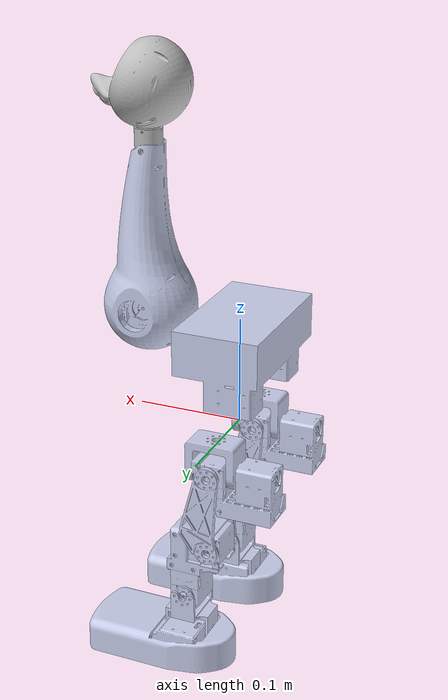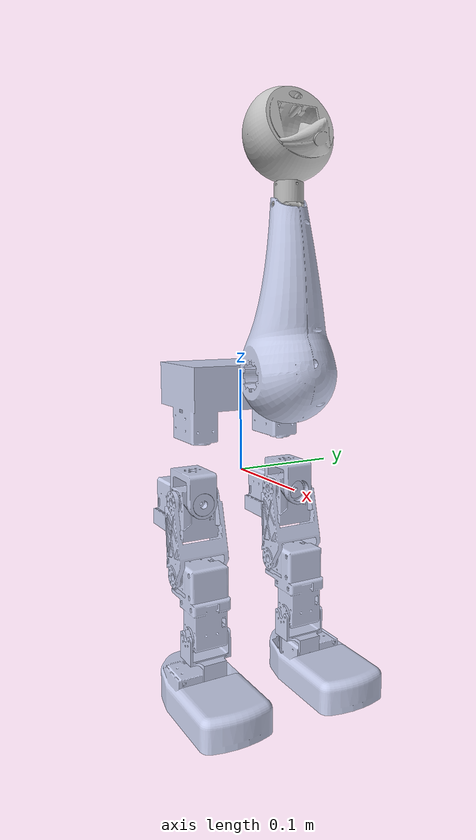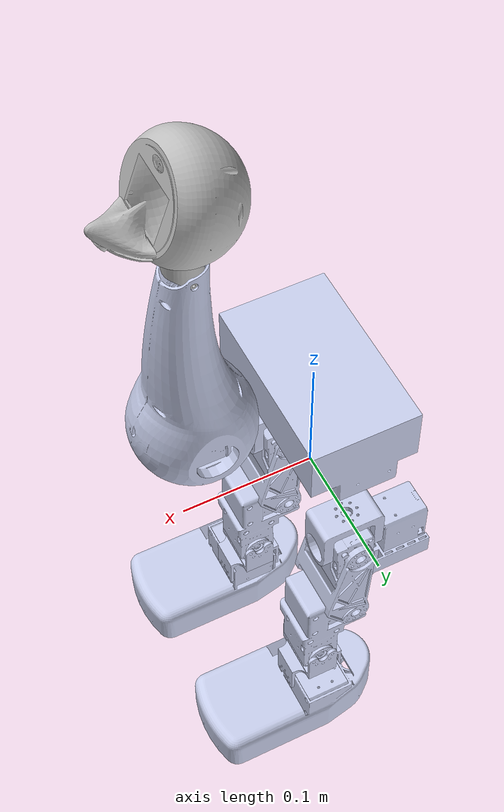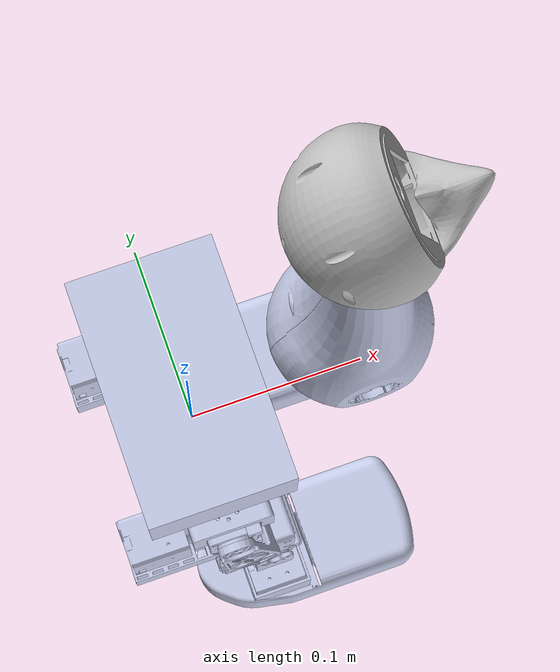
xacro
<?xml version="1.0" encoding="utf-8"?>
<robot name="exhx5" xmlns:xacro="http://ros.org/wiki/xacro">

  <xacro:include filename="$(find exhx5_description)/urdf/exhx5_gazebo.xacro" />
  <xacro:include filename="$(find exhx5_description)/urdf/exhx5_transmissions.xacro" />

  <link
    name="body_link">
    <inertial>
      <origin
        xyz="-0.024506 -3.2231E-05 0.033725"
        rpy="0 0 0" />
      <mass
        value="0.75842" />
      <inertia
        ixx="0.0018267"
        ixy="-0.00016368"
        ixz="-0.00022149"
        iyy="0.0028108"
        iyz="-5.9556E-06"
        izz="0.0041242" />
    </inertial>
    <visual>
      <origin
        xyz="0 0 0"
        rpy="0 0 0" />
      <geometry>
        <mesh
          filename="package://exhx5_description/meshes/body_link.STL" />
      </geometry>
      <material
        name="">
        <color
          rgba="0.79216 0.81961 0.93333 1" />
      </material>
    </visual>
    <collision>
      <origin
        xyz="0 0 0"
        rpy="0 0 0" />
      <geometry>
        <mesh
          filename="package://exhx5_description/meshes/body_link.STL" />
      </geometry>
    </collision>
  </link>
  <link
    name="r_hip_yaw_link">
    <inertial>
      <origin
        xyz="6.9389E-16 0.00049037 0.015811"
        rpy="0 0 0" />
      <mass
        value="0.017594" />
      <inertia
        ixx="8.0769E-06"
        ixy="9.3231E-20"
        ixz="-6.8781E-20"
        iyy="3.8081E-06"
        iyz="4.4924E-07"
        izz="6.9409E-06" />
    </inertial>
    <visual>
      <origin
        xyz="0 0 0"
        rpy="0 0 0" />
      <geometry>
        <mesh
          filename="package://exhx5_description/meshes/r_hip_yaw_link.STL" />
      </geometry>
      <material
        name="">
        <color
          rgba="0.79216 0.81961 0.93333 1" />
      </material>
    </visual>
    <collision>
      <origin
        xyz="0 0 0"
        rpy="0 0 0" />
      <geometry>
        <mesh
          filename="package://exhx5_description/meshes/r_hip_yaw_link.STL" />
      </geometry>
    </collision>
  </link>
  <joint
    name="r_hip_yaw"
    type="revolute">
    <origin
      xyz="0 -0.0539999999999998 -0.024500000000006"
      rpy="0 0 1.57079632679488" />
    <parent
      link="body_link" />
    <child
      link="r_hip_yaw_link" />
    <axis
      xyz="0 0 1" />
    <limit
      lower="-1.57"
      upper="1.57"
      effort="0"
      velocity="0" />
    <safety_controller
      k_velocity="0" />
  </joint>
  <link
    name="r_hip_roll_link">
    <inertial>
      <origin
        xyz="0.013265 -0.00034234 -0.01908"
        rpy="0 0 0" />
      <mass
        value="0.10053" />
      <inertia
        ixx="1.7395E-05"
        ixy="-2.6908E-07"
        ixz="3.1908E-07"
        iyy="2.5171E-05"
        iyz="-1.1436E-12"
        izz="2.5299E-05" />
    </inertial>
    <visual>
      <origin
        xyz="0 0 0"
        rpy="0 0 0" />
      <geometry>
        <mesh
          filename="package://exhx5_description/meshes/r_hip_roll_link.STL" />
      </geometry>
      <material
        name="">
        <color
          rgba="0.79216 0.81961 0.93333 1" />
      </material>
    </visual>
    <collision>
      <origin
        xyz="0 0 0"
        rpy="0 0 0" />
      <geometry>
        <mesh
          filename="package://exhx5_description/meshes/r_hip_roll_link.STL" />
      </geometry>
    </collision>
  </link>
  <joint
    name="r_hip_roll"
    type="revolute">
    <origin
      xyz="0 0 0"
      rpy="1.5708 1.5708 0" />
    <parent
      link="r_hip_yaw_link" />
    <child
      link="r_hip_roll_link" />
    <axis
      xyz="0 0 1" />
    <limit
      lower="-1.57"
      upper="1.57"
      effort="0"
      velocity="0" />
    <safety_controller
      k_velocity="0" />
  </joint>
  <link
    name="r_hip_pitch_link">
    <inertial>
      <origin
        xyz="0.041705 0.0061699 2.177E-08"
        rpy="0 0 0" />
      <mass
        value="0.023646" />
      <inertia
        ixx="1.2406E-05"
        ixy="-7.7791E-07"
        ixz="9.7606E-13"
        iyy="2.2891E-05"
        iyz="4.5062E-12"
        izz="1.4533E-05" />
    </inertial>
    <visual>
      <origin
        xyz="0 0 0"
        rpy="0 0 0" />
      <geometry>
        <mesh
          filename="package://exhx5_description/meshes/r_hip_pitch_link.STL" />
      </geometry>
      <material
        name="">
        <color
          rgba="0.79216 0.81961 0.93333 1" />
      </material>
    </visual>
    <collision>
      <origin
        xyz="0 0 0"
        rpy="0 0 0" />
      <geometry>
        <mesh
          filename="package://exhx5_description/meshes/r_hip_pitch_link.STL" />
      </geometry>
    </collision>
  </link>
  <joint
    name="r_hip_pitch"
    type="revolute">
    <origin
      xyz="0 0 0"
      rpy="1.5708 0 0" />
    <parent
      link="r_hip_roll_link" />
    <child
      link="r_hip_pitch_link" />
    <axis
      xyz="0 0 1" />
    <limit
      lower="-1.57"
      upper="1.57"
      effort="0"
      velocity="0" />
    <safety_controller
      k_velocity="0" />
  </joint>
  <link
    name="r_knee_link">
    <inertial>
      <origin
        xyz="0.025579 0.0091776 0.00042921"
        rpy="0 0 0" />
      <mass
        value="0.10139" />
      <inertia
        ixx="2.4558E-05"
        ixy="4.9361E-07"
        ixz="-1.2228E-07"
        iyy="2.2855E-05"
        iyz="3.2346E-07"
        izz="2.5943E-05" />
    </inertial>
    <visual>
      <origin
        xyz="0 0 0"
        rpy="0 0 0" />
      <geometry>
        <mesh
          filename="package://exhx5_description/meshes/r_knee_link.STL" />
      </geometry>
      <material
        name="">
        <color
          rgba="0.79216 0.81961 0.93333 1" />
      </material>
    </visual>
    <collision>
      <origin
        xyz="0 0 0"
        rpy="0 0 0" />
      <geometry>
        <mesh
          filename="package://exhx5_description/meshes/r_knee_link.STL" />
      </geometry>
    </collision>
  </link>
  <joint
    name="r_knee"
    type="revolute">
    <origin
      xyz="0.075954 0 0"
      rpy="0 0.0004216 0.42593" />
    <parent
      link="r_hip_pitch_link" />
    <child
      link="r_knee_link" />
    <axis
      xyz="-0.0004216 0 1" />
    <limit
      lower="-1.57"
      upper="1.57"
      effort="0"
      velocity="0" />
    <safety_controller
      k_velocity="0" />
  </joint>
  <link
    name="r_ank_pitch_link">
    <inertial>
      <origin
        xyz="0.02325 -2.2204E-16 1.3878E-17"
        rpy="0 0 0" />
      <mass
        value="0.0095421" />
      <inertia
        ixx="3.5492E-06"
        ixy="1.0553E-21"
        ixz="1.8686E-21"
        iyy="2.8994E-06"
        iyz="-8.2951E-22"
        izz="2.8994E-06" />
    </inertial>
    <visual>
      <origin
        xyz="0 0 0"
        rpy="0 0 0" />
      <geometry>
        <mesh
          filename="package://exhx5_description/meshes/r_ank_pitch_link.STL" />
      </geometry>
      <material
        name="">
        <color
          rgba="0.79216 0.81961 0.93333 1" />
      </material>
    </visual>
    <collision>
      <origin
        xyz="0 0 0"
        rpy="0 0 0" />
      <geometry>
        <mesh
          filename="package://exhx5_description/meshes/r_ank_pitch_link.STL" />
      </geometry>
    </collision>
  </link>
  <joint
    name="r_ank_pitch"
    type="revolute">
    <origin
      xyz="0.059298 0 0"
      rpy="0.00017419 -0.00038393 -0.42593" />
    <parent
      link="r_knee_link" />
    <child
      link="r_ank_pitch_link" />
    <axis
      xyz="0 0 1" />
    <limit
      lower="-1.57"
      upper="1.57"
      effort="0"
      velocity="0" />
    <safety_controller
      k_velocity="0" />
  </joint>
  <link
    name="r_ank_roll_link">
    <inertial>
      <origin
        xyz="0.00474 -0.010189 0.017732"
        rpy="0 0 0" />
      <mass
        value="0.1244" />
      <inertia
        ixx="0.00013147"
        ixy="1.1537E-08"
        ixz="1.5896E-06"
        iyy="9.5366E-05"
        iyz="-2.4562E-07"
        izz="4.9024E-05" />
    </inertial>
    <visual>
      <origin
        xyz="0 0 0"
        rpy="0 0 0" />
      <geometry>
        <mesh
          filename="package://exhx5_description/meshes/r_ank_roll_link.STL" />
      </geometry>
      <material
        name="">
        <color
          rgba="0.79216 0.81961 0.93333 1" />
      </material>
    </visual>
    <collision>
      <origin
        xyz="0 0 0"
        rpy="0 0 0" />
      <geometry>
        <mesh
          filename="package://exhx5_description/meshes/r_ank_roll_link.STL" />
      </geometry>
    </collision>
  </link>
  <joint
    name="r_ank_roll"
    type="revolute">
    <origin
      xyz="0.0465 0 0"
      rpy="-1.5708 0 0" />
    <parent
      link="r_ank_pitch_link" />
    <child
      link="r_ank_roll_link" />
    <axis
      xyz="0 0 1" />
    <limit
      lower="-1.57"
      upper="1.57"
      effort="0"
      velocity="0" />
    <safety_controller
      k_velocity="0" />
  </joint>
  <link
    name="l_hip_yaw_link">
    <inertial>
      <origin
        xyz="2.5674E-16 0.00049037 0.015811"
        rpy="0 0 0" />
      <mass
        value="0.017594" />
      <inertia
        ixx="8.0769E-06"
        ixy="9.4844E-20"
        ixz="-7.0787E-20"
        iyy="3.8081E-06"
        iyz="4.4924E-07"
        izz="6.9409E-06" />
    </inertial>
    <visual>
      <origin
        xyz="0 0 0"
        rpy="0 0 0" />
      <geometry>
        <mesh
          filename="package://exhx5_description/meshes/l_hip_yaw_link.STL" />
      </geometry>
      <material
        name="">
        <color
          rgba="0.79216 0.81961 0.93333 1" />
      </material>
    </visual>
    <collision>
      <origin
        xyz="0 0 0"
        rpy="0 0 0" />
      <geometry>
        <mesh
          filename="package://exhx5_description/meshes/l_hip_yaw_link.STL" />
      </geometry>
    </collision>
  </link>
  <joint
    name="l_hip_yaw"
    type="revolute">
    <origin
      xyz="0 0.054 -0.0245"
      rpy="0 0 1.5708" />
    <parent
      link="body_link" />
    <child
      link="l_hip_yaw_link" />
    <axis
      xyz="-2.8454E-05 0 1" />
    <limit
      lower="-1.57"
      upper="1.57"
      effort="0"
      velocity="0" />
    <safety_controller
      k_velocity="0" />
  </joint>
  <link
    name="l_hip_roll_link">
    <inertial>
      <origin
        xyz="0.013576 -0.00035038 -0.020028"
        rpy="0 0 0" />
      <mass
        value="0.098221" />
      <inertia
        ixx="1.7307E-05"
        ixy="-2.6908E-07"
        ixz="3.1908E-07"
        iyy="2.5083E-05"
        iyz="-1.1436E-12"
        izz="2.5141E-05" />
    </inertial>
    <visual>
      <origin
        xyz="0 0 0"
        rpy="0 0 0" />
      <geometry>
        <mesh
          filename="package://exhx5_description/meshes/l_hip_roll_link.STL" />
      </geometry>
      <material
        name="">
        <color
          rgba="0.79216 0.81961 0.93333 1" />
      </material>
    </visual>
    <collision>
      <origin
        xyz="0 0 0"
        rpy="0 0 0" />
      <geometry>
        <mesh
          filename="package://exhx5_description/meshes/l_hip_roll_link.STL" />
      </geometry>
    </collision>
  </link>
  <joint
    name="l_hip_roll"
    type="revolute">
    <origin
      xyz="0 0 0"
      rpy="1.5708 1.5708 0" />
    <parent
      link="l_hip_yaw_link" />
    <child
      link="l_hip_roll_link" />
    <axis
      xyz="0 0 1" />
    <limit
      lower="-1.57"
      upper="1.57"
      effort="0"
      velocity="0" />
    <safety_controller
      k_velocity="0" />
  </joint>
  <link
    name="l_hip_pitch_link">
    <inertial>
      <origin
        xyz="0.041705 0.0061699 2.1346E-08"
        rpy="0 0 0" />
      <mass
        value="0.023646" />
      <inertia
        ixx="1.2406E-05"
        ixy="-7.7791E-07"
        ixz="8.1343E-13"
        iyy="2.2891E-05"
        iyz="4.6012E-12"
        izz="1.4533E-05" />
    </inertial>
    <visual>
      <origin
        xyz="0 0 0"
        rpy="0 0 0" />
      <geometry>
        <mesh
          filename="package://exhx5_description/meshes/l_hip_pitch_link.STL" />
      </geometry>
      <material
        name="">
        <color
          rgba="0.79216 0.81961 0.93333 1" />
      </material>
    </visual>
    <collision>
      <origin
        xyz="0 0 0"
        rpy="0 0 0" />
      <geometry>
        <mesh
          filename="package://exhx5_description/meshes/l_hip_pitch_link.STL" />
      </geometry>
    </collision>
  </link>
  <joint
    name="l_hip_pitch"
    type="revolute">
    <origin
      xyz="0 0 0"
      rpy="1.5708 0 0" />
    <parent
      link="l_hip_roll_link" />
    <child
      link="l_hip_pitch_link" />
    <axis
      xyz="0 0 -1" />
    <limit
      lower="-1.57"
      upper="1.57"
      effort="0"
      velocity="0" />
    <safety_controller
      k_velocity="0" />
  </joint>
  <link
    name="l_knee_link">
    <inertial>
      <origin
        xyz="0.025567 0.0092446 0.00043028"
        rpy="0 0 0" />
      <mass
        value="0.10219" />
      <inertia
        ixx="2.4767E-05"
        ixy="5.0737E-07"
        ixz="-1.2513E-07"
        iyy="2.3061E-05"
        iyz="3.2454E-07"
        izz="2.6112E-05" />
    </inertial>
    <visual>
      <origin
        xyz="0 0 0"
        rpy="0 0 0" />
      <geometry>
        <mesh
          filename="package://exhx5_description/meshes/l_knee_link.STL" />
      </geometry>
      <material
        name="">
        <color
          rgba="0.79216 0.81961 0.93333 1" />
      </material>
    </visual>
    <collision>
      <origin
        xyz="0 0 0"
        rpy="0 0 0" />
      <geometry>
        <mesh
          filename="package://exhx5_description/meshes/l_knee_link.STL" />
      </geometry>
    </collision>
  </link>
  <joint
    name="l_knee"
    type="revolute">
    <origin
      xyz="0.075954 0 0"
      rpy="0 0.0025296 0.42593" />
    <parent
      link="l_hip_pitch_link" />
    <child
      link="l_knee_link" />
    <axis
      xyz="0.0025296 0 -1" />
    <limit
      lower="-1.57"
      upper="1.57"
      effort="0"
      velocity="0" />
    <safety_controller
      k_velocity="0" />
  </joint>
  <link
    name="l_ank_pitch_link">
    <inertial>
      <origin
        xyz="0.02325 2.3176E-15 -1.4919E-15"
        rpy="0 0 0" />
      <mass
        value="0.0095421" />
      <inertia
        ixx="3.5492E-06"
        ixy="-5.3001E-21"
        ixz="1.6479E-21"
        iyy="2.8994E-06"
        iyz="-6.6441E-22"
        izz="2.8994E-06" />
    </inertial>
    <visual>
      <origin
        xyz="0 0 0"
        rpy="0 0 0" />
      <geometry>
        <mesh
          filename="package://exhx5_description/meshes/l_ank_pitch_link.STL" />
      </geometry>
      <material
        name="">
        <color
          rgba="0.79216 0.81961 0.93333 1" />
      </material>
    </visual>
    <collision>
      <origin
        xyz="0 0 0"
        rpy="0 0 0" />
      <geometry>
        <mesh
          filename="package://exhx5_description/meshes/l_ank_pitch_link.STL" />
      </geometry>
    </collision>
  </link>
  <joint
    name="l_ank_pitch"
    type="revolute">
    <origin
      xyz="0.059298 0 0"
      rpy="0.0010451 -0.0023036 -0.42593" />
    <parent
      link="l_knee_link" />
    <child
      link="l_ank_pitch_link" />
    <axis
      xyz="0 0 1" />
    <limit
      lower="-1.57"
      upper="1.57"
      effort="0"
      velocity="0" />
    <safety_controller
      k_velocity="0" />
  </joint>
  <link
    name="l_ank_roll_link">
    <inertial>
      <origin
        xyz="0.004986 0.0099744 0.020867"
        rpy="0 0 0" />
      <mass
        value="0.13679" />
      <inertia
        ixx="0.00013651"
        ixy="1.0973E-06"
        ixz="-1.4778E-07"
        iyy="9.9705E-05"
        iyz="2.0814E-06"
        izz="5.2371E-05" />
    </inertial>
    <visual>
      <origin
        xyz="0 0 0"
        rpy="0 0 0" />
      <geometry>
        <mesh
          filename="package://exhx5_description/meshes/l_ank_roll_link.STL" />
      </geometry>
      <material
        name="">
        <color
          rgba="0.79216 0.81961 0.93333 1" />
      </material>
    </visual>
    <collision>
      <origin
        xyz="0 0 0"
        rpy="0 0 0" />
      <geometry>
        <mesh
          filename="package://exhx5_description/meshes/l_ank_roll_link.STL" />
      </geometry>
    </collision>
  </link>
  <joint
    name="l_ank_roll"
    type="revolute">
    <origin
      xyz="0.0465 0 0"
      rpy="-1.5708 0 0" />
    <parent
      link="l_ank_pitch_link" />
    <child
      link="l_ank_roll_link" />
    <axis
      xyz="0 0 1" />
    <limit
      lower="-1.57"
      upper="1.57"
      effort="0"
      velocity="0" />
    <safety_controller
      k_velocity="0" />
  </joint>
  <link
    name="neck_pitch_link">
    <inertial>
      <origin
        xyz="0.023537 -0.003724 -0.00028487"
        rpy="0 0 0" />
      <mass
        value="0.1662" />
      <inertia
        ixx="6.6503E-05"
        ixy="1.0732E-06"
        ixz="6.9267E-06"
        iyy="0.00022623"
        iyz="4.8946E-06"
        izz="0.00025375" />
    </inertial>
    <visual>
      <origin
        xyz="0 0 0"
        rpy="0 0 0" />
      <geometry>
        <mesh
          filename="package://exhx5_description/meshes/neck_pitch_link.STL" />
      </geometry>
      <material
        name="">
        <color
          rgba="0.79216 0.81961 0.93333 1" />
      </material>
    </visual>
    <collision>
      <origin
        xyz="0 0 0"
        rpy="0 0 0" />
      <geometry>
        <mesh
          filename="package://exhx5_description/meshes/neck_pitch_link.STL" />
      </geometry>
    </collision>
  </link>
  <joint
    name="neck_pitch"
    type="revolute">
    <origin
      xyz="0.08865 0 0.10254"
      rpy="1.5708 -1.5708 0" />
    <parent
      link="body_link" />
    <child
      link="neck_pitch_link" />
    <axis
      xyz="0 0 -1" />
    <limit
      lower="-1.57"
      upper="1.57"
      effort="0"
      velocity="0" />
    <safety_controller
      k_velocity="0" />
  </joint>
  <link
    name="head_tilt_link">
    <inertial>
      <origin
        xyz="-0.00070546 0.013146 0.00027149"
        rpy="0 0 0" />
      <mass
        value="0.0061954" />
      <inertia
        ixx="5.3428E-07"
        ixy="-1.5374E-08"
        ixz="-3.8762E-09"
        iyy="5.8024E-07"
        iyz="1.3817E-08"
        izz="4.6408E-07" />
    </inertial>
    <visual>
      <origin
        xyz="0 0 0"
        rpy="0 0 0" />
      <geometry>
        <mesh
          filename="package://exhx5_description/meshes/head_tilt_link.STL" />
      </geometry>
      <material
        name="">
        <color
          rgba="0.7451 0.7451 0.7451 1" />
      </material>
    </visual>
    <collision>
      <origin
        xyz="0 0 0"
        rpy="0 0 0" />
      <geometry>
        <mesh
          filename="package://exhx5_description/meshes/head_tilt_link.STL" />
      </geometry>
    </collision>
  </link>
  <joint
    name="head_tilt"
    type="revolute">
    <origin
      xyz="0.14528 0 0"
      rpy="0 0 -1.5708" />
    <parent
      link="neck_pitch_link" />
    <child
      link="head_tilt_link" />
    <axis
      xyz="0 0 -1" />
    <limit
      lower="-1.57"
      upper="1.57"
      effort="0"
      velocity="0" />
    <safety_controller
      k_velocity="0" />
  </joint>
  <link
    name="head_pan_link">
    <inertial>
      <origin
        xyz="0.0052568 -9.7868E-05 0.053166"
        rpy="0 0 0" />
      <mass
        value="0.039218" />
      <inertia
        ixx="2.6979E-05"
        ixy="-3.471E-09"
        ixz="-1.7411E-06"
        iyy="1.8556E-05"
        iyz="-6.4409E-08"
        izz="2.0489E-05" />
    </inertial>
    <visual>
      <origin
        xyz="0 0 0"
        rpy="0 0 0" />
      <geometry>
        <mesh
          filename="package://exhx5_description/meshes/head_pan_link.STL" />
      </geometry>
      <material
        name="">
        <color
          rgba="0.75294 0.75294 0.75294 1" />
      </material>
    </visual>
    <collision>
      <origin
        xyz="0 0 0"
        rpy="0 0 0" />
      <geometry>
        <mesh
          filename="package://exhx5_description/meshes/head_pan_link.STL" />
      </geometry>
    </collision>
  </link>
  <joint
    name="head_pan"
    type="revolute">
    <origin
      xyz="0 0 0"
      rpy="-1.5708 0 0" />
    <parent
      link="head_tilt_link" />
    <child
      link="head_pan_link" />
    <axis
      xyz="0 0 -1" />
    <limit
      lower="-1.57"
      upper="1.57"
      effort="0"
      velocity="0" />
    <safety_controller
      k_velocity="0" />
  </joint>

  <xacro:insert_transmission name="r_hip_yaw" />
  <xacro:insert_transmission name="r_hip_roll" />
  <xacro:insert_transmission name="r_hip_pitch" />
  <xacro:insert_transmission name="r_knee" />
  <xacro:insert_transmission name="r_ank_pitch" />
  <xacro:insert_transmission name="r_ank_roll" />
  <xacro:insert_transmission name="l_hip_yaw" />
  <xacro:insert_transmission name="l_hip_roll" />
  <xacro:insert_transmission name="l_hip_pitch" />
  <xacro:insert_transmission name="l_knee" />
  <xacro:insert_transmission name="l_ank_pitch" />
  <xacro:insert_transmission name="l_ank_roll" />
  <xacro:insert_transmission name="neck_pitch" />
  <xacro:insert_transmission name="head_tilt" />
  <xacro:insert_transmission name="head_pan" />

</robot>
